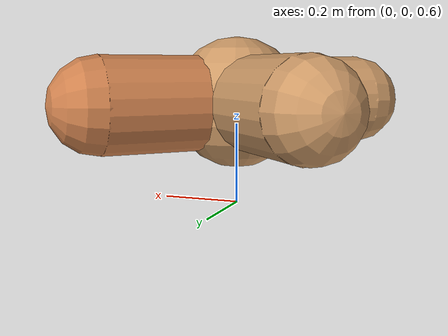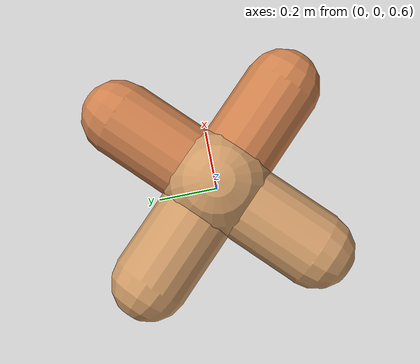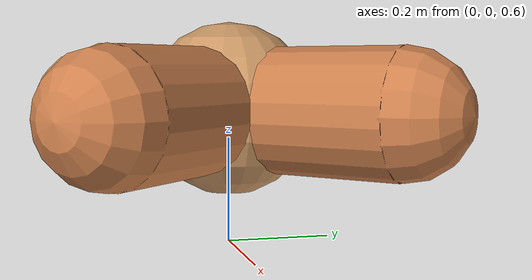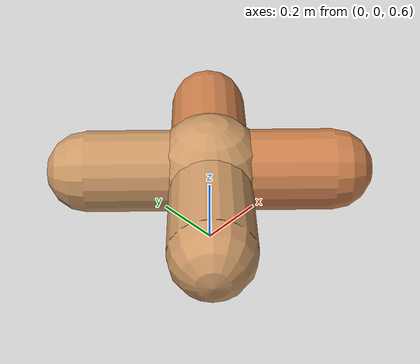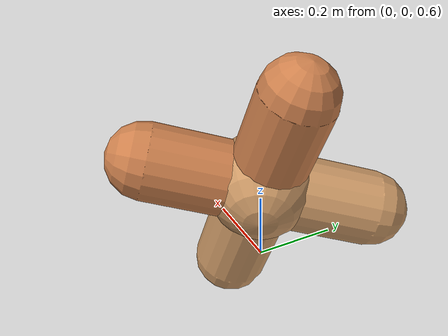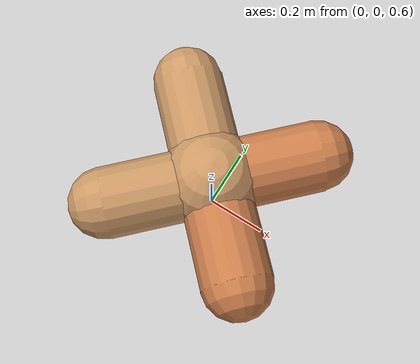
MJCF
<mujoco model="ant">
  <compiler angle="degree" coordinate="local" inertiafromgeom="true"/>
  <option integrator="RK4" timestep="0.01"/>
  <custom>
    <numeric data="0.0 0.0 0.55 1.0 0.0 0.0 0.0 0.0 1.0 0.0 -1.0 0.0 -1.0 0.0 1.0" name="init_qpos"/>
  </custom>
  <default>
    <joint armature="1" damping="1" limited="true"/>
    <geom conaffinity="0" condim="3" density="5.0" friction="1.5 0.1 0.1" margin="0.01" rgba="0.8 0.6 0.4 1"/>
  </default>
  <worldbody>
    <body name="torso" pos="0 0 0.8560714999342169">
      <geom name="torso_geom" pos="0 0 0" size="0.16398711237075386" type="sphere"/>
      <!--joint armature="0" damping="0" limited="false" margin="0.01" name="root" pos="0 0 0" type="free"/-->
      <body name="front_left_leg" pos="0 0 0">
        <geom fromto="0.0 0.0 0.0 0.0010730533838716194 0.0010730533838716194 0.0" name="aux_1_geom" size="0.08" type="capsule" rgba=".8 .5 .3 1"/>
        <body name="aux_1" pos="0.0010730533838716194 0.0010730533838716194 0">
          <joint axis="0 0 1" name="hip_1" pos="0.0 0.0 0.0" range="-40 40" type="hinge"/>
          <geom fromto="0.0 0.0 0.0 0.0010730533838716194 0.0010730533838716194 0.0" name="left_leg_geom" size="0.11140256918206032" type="capsule" rgba=".8 .5 .3 1"/>
          <body pos="0.0010730533838716194 0.0010730533838716194 0" name="front_left_foot">
            <joint axis="-1 1 0" name="ankle_1" pos="0.0 0.0 0.0" range="30 100" type="hinge"/>
            <geom fromto="0.0 0.0 0.0 0.24594420281293064 0.24594420281293064 0.0" name="left_ankle_geom" size="0.11728760088524376" type="capsule" rgba=".8 .5 .3 1"/>
          </body>
        </body>
      </body>
      <body name="front_right_leg" pos="0 0 0">
        <geom fromto="0.0 0.0 0.0 -0.0010730533838716194 0.0010730533838716194 0.0" name="aux_2_geom" size="0.08" type="capsule"/>
        <body name="aux_2" pos="-0.0010730533838716194 0.0010730533838716194 0">
          <joint axis="0 0 1" name="hip_2" pos="0.0 0.0 0.0" range="-40 40" type="hinge"/>
          <geom fromto="0.0 0.0 0.0 -0.0010730533838716194 0.0010730533838716194 0.0" name="right_leg_geom" size="0.11140256918206032" type="capsule"/>
          <body pos="-0.0010730533838716194 0.0010730533838716194 0" name="front_right_foot">
            <joint axis="1 1 0" name="ankle_2" pos="0.0 0.0 0.0" range="-100 -30" type="hinge"/>
            <geom fromto="0.0 0.0 0.0 -0.24594420281293064 0.24594420281293064 0.0" name="right_ankle_geom" size="0.11728760088524376" type="capsule"/>
          </body>
        </body>
      </body>
      <body name="left_back_leg" pos="0 0 0">
        <geom fromto="0.0 0.0 0.0 -0.0010730533838716194 -0.0010730533838716194 0.0" name="aux_3_geom" size="0.08" type="capsule"/>
        <body name="aux_3" pos="-0.0010730533838716194 -0.0010730533838716194 0">
          <joint axis="0 0 1" name="hip_3" pos="0.0 0.0 0.0" range="-40 40" type="hinge"/>
          <geom fromto="0.0 0.0 0.0 -0.0010730533838716194 -0.0010730533838716194 0.0" name="back_leg_geom" size="0.11140256918206032" type="capsule"/>
          <body pos="-0.0010730533838716194 -0.0010730533838716194 0" name="left_back_foot">
            <joint axis="-1 1 0" name="ankle_3" pos="0.0 0.0 0.0" range="-100 -30" type="hinge"/>
            <geom fromto="0.0 0.0 0.0 -0.24594420281293064 -0.24594420281293064 0.0" name="third_ankle_geom" size="0.11728760088524376" type="capsule"/>
          </body>
        </body>
      </body>
      <body name="right_back_leg" pos="0 0 0">
        <geom fromto="0.0 0.0 0.0 0.0010730533838716194 -0.0010730533838716194 0.0" name="aux_4_geom" size="0.08" type="capsule" rgba=".8 .5 .3 1"/>
        <body name="aux_4" pos="0.0010730533838716194 -0.0010730533838716194 0">
          <joint axis="0 0 1" name="hip_4" pos="0.0 0.0 0.0" range="-40 40" type="hinge"/>
          <geom fromto="0.0 0.0 0.0 0.0010730533838716194 -0.0010730533838716194 0.0" name="rightback_leg_geom" size="0.11140256918206032" type="capsule" rgba=".8 .5 .3 1"/>
          <body pos="0.0010730533838716194 -0.0010730533838716194 0" name="right_back_foot">
            <joint axis="1 1 0" name="ankle_4" pos="0.0 0.0 0.0" range="30 100" type="hinge"/>
            <geom fromto="0.0 0.0 0.0 0.24594420281293064 -0.24594420281293064 0.0" name="fourth_ankle_geom" size="0.11728760088524376" type="capsule" rgba=".8 .5 .3 1"/>
          </body>
        </body>
      </body>
    </body>
  </worldbody>
  <actuator>
    <motor ctrllimited="true" ctrlrange="-1.0 1.0" joint="hip_4" gear="150"/>
    <motor ctrllimited="true" ctrlrange="-1.0 1.0" joint="ankle_4" gear="150"/>
    <motor ctrllimited="true" ctrlrange="-1.0 1.0" joint="hip_1" gear="150"/>
    <motor ctrllimited="true" ctrlrange="-1.0 1.0" joint="ankle_1" gear="150"/>
    <motor ctrllimited="true" ctrlrange="-1.0 1.0" joint="hip_2" gear="150"/>
    <motor ctrllimited="true" ctrlrange="-1.0 1.0" joint="ankle_2" gear="150"/>
    <motor ctrllimited="true" ctrlrange="-1.0 1.0" joint="hip_3" gear="150"/>
    <motor ctrllimited="true" ctrlrange="-1.0 1.0" joint="ankle_3" gear="150"/>
  </actuator>
</mujoco>
